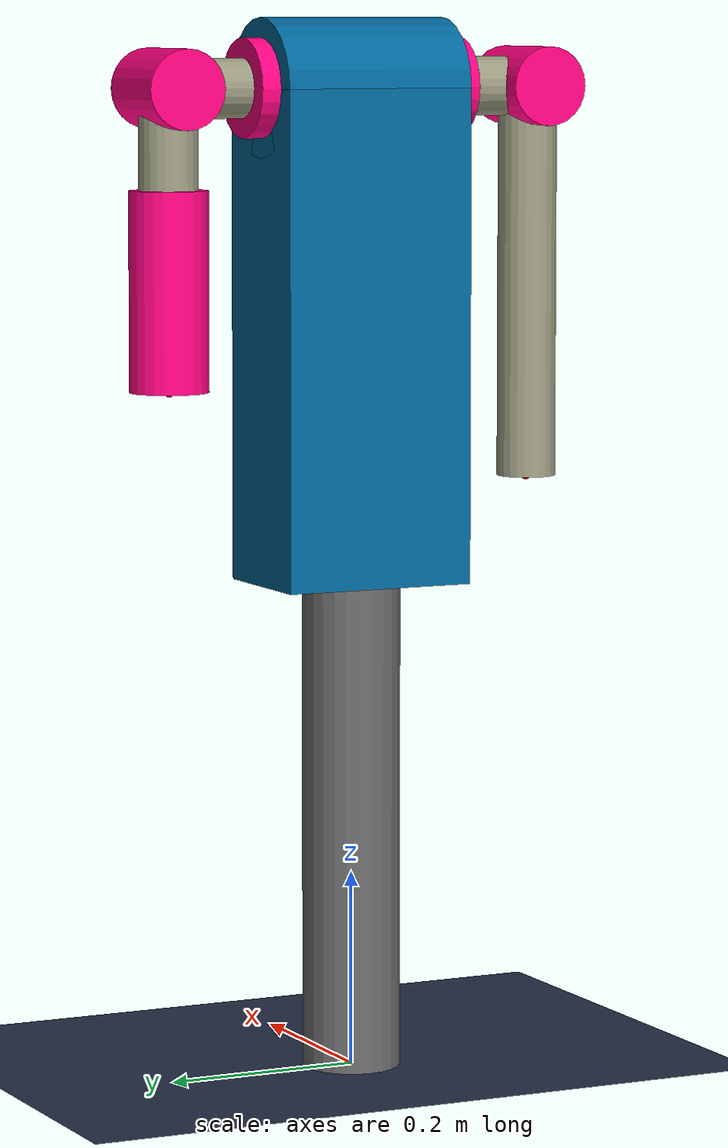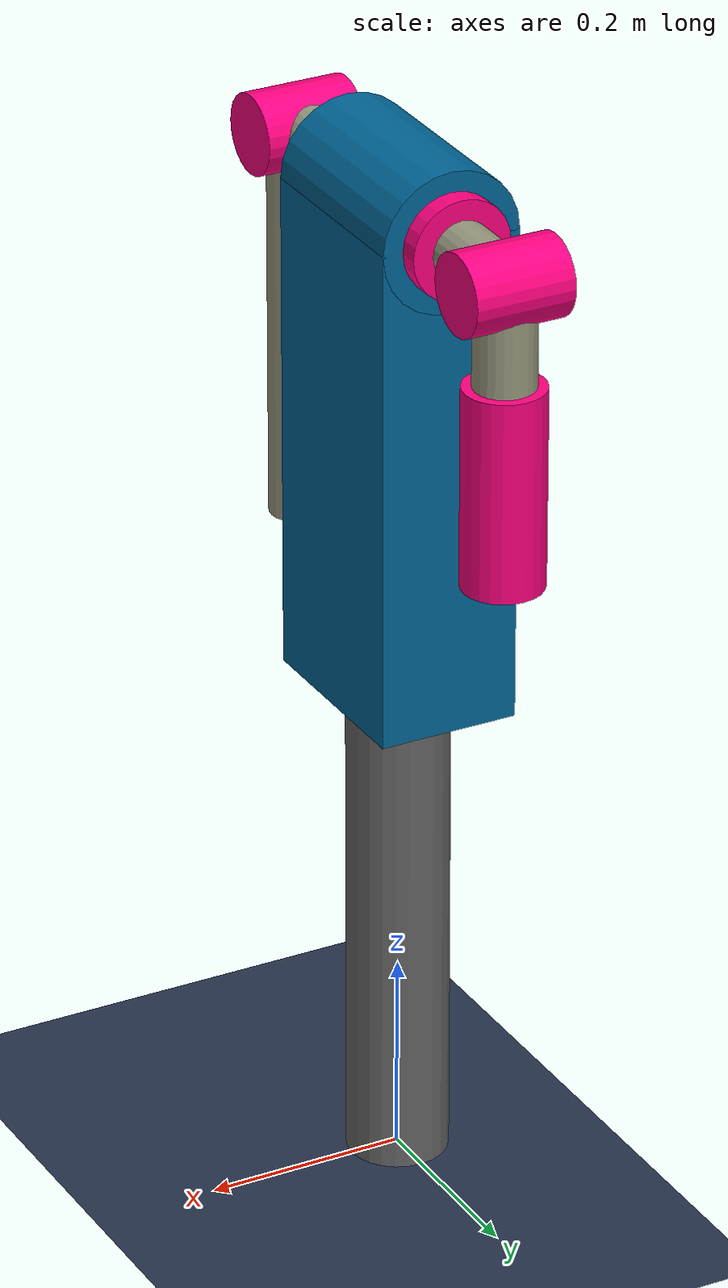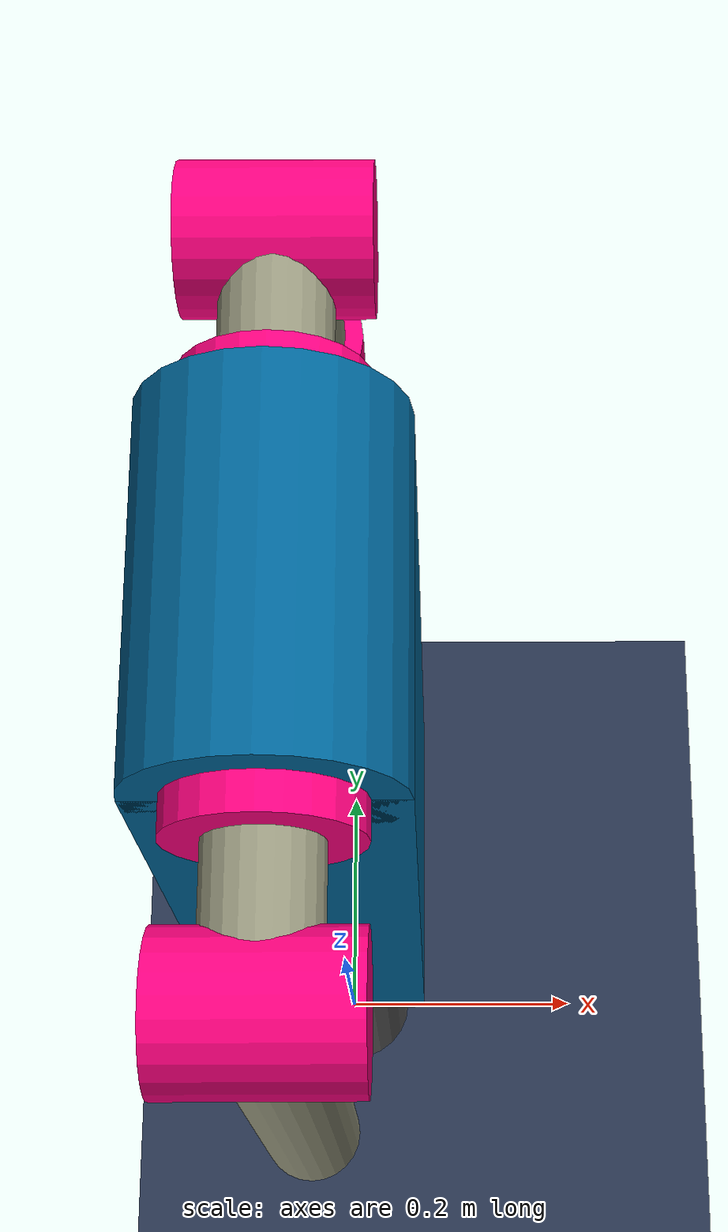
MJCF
<mujoco model="Dual Arm">
	<compiler angle="degree" coordinate="local" inertiafromgeom="true" autolimits="true" texturedir="PNG"/>

	<option	timestep="0.001" gravity="0 0 -9.81" integrator="Euler" o_solref="0.005 0.2" o_solimp="0.95 0.98 0.01 0.5 2"
					cone="elliptic" jacobian="auto" solver="Newton" tolerance="1e-10" impratio="1.0"/>

	<option>
		<flag gravity="enable" sensornoise="disable" override="enable"/>
	</option>

	<visual>
		<global fovy="45" linewidth="2" glow="0.3"/>
		<quality shadowsize="4096" numslices="28"/>
		<map stiffness="50" stiffnessrot="100"/>
		<scale forcewidth="0.03" contactwidth="0.15" contactheight="0.1" connect="0.1" com="0.2" jointlength="2.5" jointwidth="0.05"
					 actuatorlength="0.5" actuatorwidth="0.3" framelength="1" framewidth="0.03"/>
		<rgba haze="0.6 0.8 0.9 1" force="0 1 0 0.5" com="0 0 1 1"/>
	</visual>

	<default>
		<geom contype="1" conaffinity="1" condim="3" material="MatGnd"/>
		<joint limited="false" damping="0.5" armature="0.1" stiffness="0" frictionloss="0"/>
		<motor gear="100 0 0 0 0 0" ctrllimited="true" ctrlrange="-100 100"/>
	</default>

	<asset>
		<texture name="texplane" type="2d"     builtin="checker"  width="512" height="512" mark="edge"  rgb1="0.2 0.3 0.4" rgb2="0.1 0.1 0.2" markrgb="1 1 1"/>
		<texture name="texgeom"  type="cube"   builtin="flat"     width="512" height="512" mark="cross" rgb1="0.8 0.6 0.4" rgb2="0.8 0.6 0.4" markrgb="1 1 1"/>
		<texture name="sky"      type="skybox" builtin="gradient" width="512" height="512" rgb1="1 1 1" rgb2="0.6 0.8 1"/>

		<material name="MatGnd"   reflectance="0" specular="1" shininess="1" rgba="0 0.4 0.5 1"/>
		<material name="MatGeom"  texture="texgeom" texuniform="true"/>
		<material name="MatPlane" texture="texplane" reflectance='0' texrepeat="1 1" texuniform="true"/>
	</asset>

	<worldbody>
		<light directional="true" pos=" 5 -5 5" dir="-0.5  0.5 -1" diffuse="0.3 0.3 0.3" specular="0.0 0.0 0.0" castshadow="false"/>
		<light directional="true" pos=" 5  5 5" dir="-0.5 -0.5 -1" diffuse="0.3 0.3 0.3" specular="0.0 0.0 0.0" castshadow="false"/>
		<light directional="true" pos="-5  5 5" dir=" 0.5 -0.5 -1" diffuse="0.3 0.3 0.3" specular="0.0 0.0 0.0" castshadow="false"/>
		<light directional="true" pos="-5 -5 5" dir=" 0.5  0.5 -1" diffuse="0.3 0.3 0.3" specular="0.0 0.0 0.0" castshadow="false"/>
		<!--light directional="true" pos=" 0  0 5" dir=" 0.0  0.0 -1" diffuse="0.1 0.1 0.1" specular="0.1 0.1 0.1" castshadow="false"/-->

		<!-- Ground Floor -->
		<geom name="Ground Floor" type="plane" pos="0 0 0" size="0 0 100" material="MatPlane"/>
		<geom type="cylinder" pos="0 0 0.25" euler="0 0 0" size="0.05 0.25" rgba="0.4 0.4 0.4 1"/>

		<!-- Torso -->
		<body name="Torso" pos="0 0 0.5">
			<inertial pos="0 0 0.25" mass="20.0"/>
			<joint name="Torso-Yaw" pos="0 0 0" type="hinge" axis="0 0 1" limited="true" range="-90 90"/>
			<geom type="box" pos="0 0 0.25" euler="0 0 0" size="0.07 0.1 0.25" rgba="0 0.4 0.6 1"/>
			<geom type="cylinder" pos="0 0 0.5" euler="90 0 0" size="0.07 0.1" rgba="0 0.4 0.6 1"/>
			<geom type="cylinder" pos="0 -0.11 0.5" euler="90 0 0" size="0.05 0.01" rgba="1 0 0.5 1"/>
			<geom type="cylinder" pos="0  0.11 0.5" euler="90 0 0" size="0.05 0.01" rgba="1 0 0.5 1"/>

			<!-- Right Arm -->
			<body name="Right Shoulder Pitch" pos="0 -0.1 0.5" euler="90 0 0">
				<inertial pos="0 0 0" mass="1.5"/>
				<joint name="RS-Pitch" pos="0 0 0" type="hinge" axis="0 0 1" limited="true" range="-90 90"/>
				<geom type="cylinder" pos="0 0 0.05" size="0.03 0.03" rgba="0.6 0.6 0.5 1"/>

				<body name="Right Shoulder Roll" pos="0 0 0.1" euler="0 90 0">
					<inertial pos="0 -0.15 0" mass="1.5"/>
					<joint name="RS-Roll" pos="0 0 0" type="hinge" axis="0 0 1" limited="false"/>
					<geom type="cylinder" pos="0 0 0" size="0.04 0.05" rgba="1 0 0.5 1"/>
					<geom type="cylinder" pos="0 -0.2 0" euler="90 0 0" size="0.03 0.2" rgba="0.6 0.6 0.5 1"/>
					<site name="Right EE" type="sphere" pos="0 -0.4 0" euler="90 0 90" rgba="1 0 0 1"/>
				</body>
			</body>
			<!-- End of Right Arm -->

			<!-- Left Arm -->
			<body name="Left Shoulder Pitch" pos="0 0.1 0.5" euler="90 0 0">
				<inertial pos="0 0 0" mass="1.5"/>
				<joint name="LS-Pitch" pos="0 0 0" type="hinge" axis="0 0 1" limited="false"/>
				<geom type="cylinder" pos="0 0 -0.05" size="0.03 0.03" rgba="0.6 0.6 0.5 1"/>
				<geom type="cylinder" pos="0 0 -0.1" euler="0 90 0" size="0.04 0.05" rgba="1 0 0.5 1"/>
				<geom type="cylinder" pos="0 -0.15 -0.1" euler="90 0 0" size="0.03 0.15" rgba="0.6 0.6 0.5 1"/>

				<body name="Left ForeArm" pos="0 -0.1 -0.1" euler="90 0 0">
					<inertial pos="0 0 0" mass="1.0"/>
					<joint name="Left-ForeArm" type="slide" axis="0 0 1"
									limited="true" range="-0.05 0.2" springref="0" springdamper="0.1 1"/>
					<geom type="cylinder" pos="0 0 0.1" size="0.04 0.1" rgba="1 0 0.5 1"/>
					<site name="Left EE" type="sphere" pos="0 0 0.2" euler="0 0 0" rgba="1 0 0 1"/>
				</body>
			</body>	<!-- End of Left Arm -->
		</body> <!-- End of Torse -->
	</worldbody>

	<actuator>
		<motor name="RS-P"      gear="50 0 0 0 0 0" joint="RS-Pitch"/>
		<motor name="LS-P"      gear="50 0 0 0 0 0" joint="LS-Pitch"/>
		<motor name="RS-R"      gear="50 0 0 0 0 0" joint="RS-Roll"/>
		<motor name="L-ForeArm" gear="50 0 0 0 0 0" joint="Left-ForeArm"/>
	</actuator>

</mujoco>
